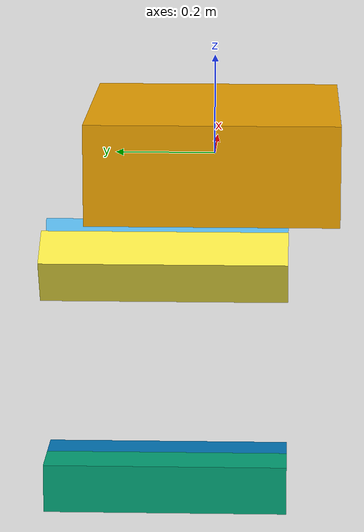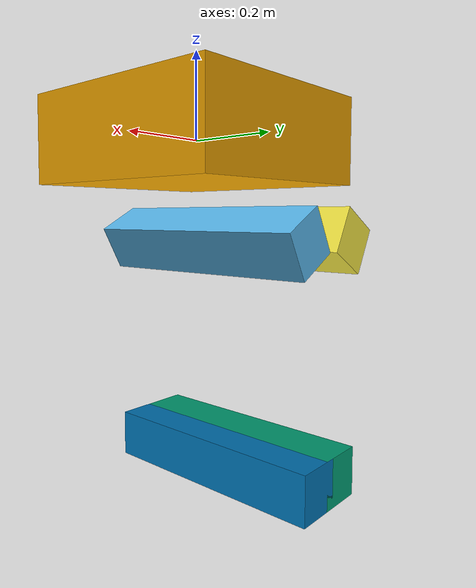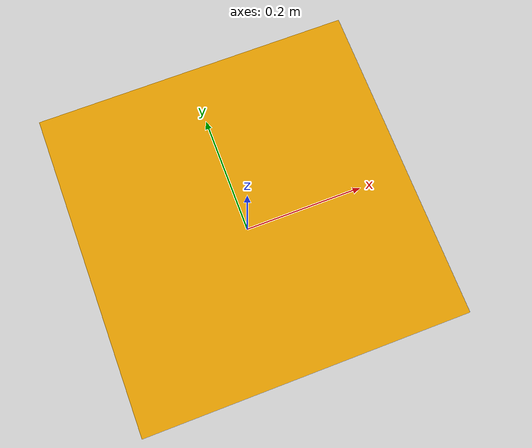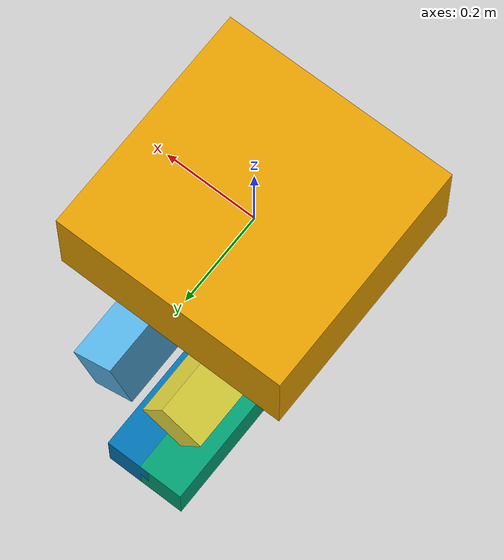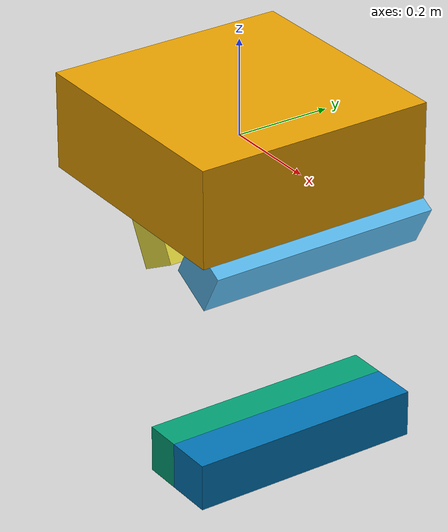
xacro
<robot xmlns:xacro="http://ros.org/wiki/xacro" name="biped_robot">

    <!-- BASE LINK -->
    <link name="base_link">
        <visual>
            <geometry>
                <box size="0.5 0.5 0.2"/> <!-- Base 크기 -->
            </geometry>
            <origin xyz="0 0 0" rpy="0 0 0"/>
        </visual>
        <collision>
            <geometry>
                <box size="0.5 0.5 0.2"/>
            </geometry>
            <origin xyz="0 0 0" rpy="0 0 0"/>
        </collision>
        <inertial>
            <mass value="1.0"/>
            <origin xyz="0 0 0" rpy="0 0 0"/>
            <inertia ixx="0.02" ixy="0.0" ixz="0.0" iyy="0.02" iyz="0.0" izz="0.02"/>
        </inertial>
    </link>

    <!-- LEFT LEG -->
    <joint name="left_hip_joint" type="continuous">
        <parent link="base_link"/>
        <child link="left_upper_leg"/>
        <origin xyz="0.2 0.1 0" rpy="0 0.5 0"/> <!-- 초기 회전 각도 -->
        <axis xyz="0 1 0"/>
        <limit lower="-1.57" upper="1.57" effort="10.0" velocity="1.0"/>
    </joint>

    <link name="left_upper_leg">
        <visual>
            <geometry>
                <box size="0.1 0.5 0.1"/> <!-- Upper leg 크기 -->
            </geometry>
            <origin xyz="0 0 -0.25" rpy="0 0 0"/>
        </visual>
        <collision>
            <geometry>
                <box size="0.1 0.5 0.1"/>
            </geometry>
            <origin xyz="0 0 -0.25" rpy="0 0 0"/>
        </collision>
        <inertial>
            <mass value="0.5"/>
            <origin xyz="0 0 -0.25" rpy="0 0 0"/>
            <inertia ixx="0.01" ixy="0.0" ixz="0.0" iyy="0.01" iyz="0.0" izz="0.01"/>
        </inertial>
    </link>

    <joint name="left_knee_joint" type="continuous">
        <parent link="left_upper_leg"/>
        <child link="left_lower_leg"/>
        <origin xyz="0 0 -0.5" rpy="0 -0.5 0"/> <!-- 초기 각도 -->
        <axis xyz="1 0 0"/>
        <limit lower="-1.57" upper="1.57" effort="10.0" velocity="1.0"/>
    </joint>

    <link name="left_lower_leg">
        <visual>
            <geometry>
                <box size="0.1 0.5 0.1"/> <!-- Lower leg 크기 -->
            </geometry>
            <origin xyz="0 0 -0.25" rpy="0 0 0"/>
        </visual>
        <collision>
            <geometry>
                <box size="0.1 0.5 0.1"/>
            </geometry>
            <origin xyz="0 0 -0.25" rpy="0 0 0"/>
        </collision>
        <inertial>
            <mass value="0.5"/>
            <origin xyz="0 0 -0.25" rpy="0 0 0"/>
            <inertia ixx="0.01" ixy="0.0" ixz="0.0" iyy="0.01" iyz="0.0" izz="0.01"/>
        </inertial>
    </link>

    <!-- RIGHT LEG (동일한 구조로 설정) -->
    <joint name="right_hip_joint" type="continuous">
        <parent link="base_link"/>
        <child link="right_upper_leg"/>
        <origin xyz="-0.2 0.1 0" rpy="0 -0.5 0"/>
        <axis xyz="0 1 0"/>
        <limit lower="-1.57" upper="1.57" effort="10.0" velocity="1.0"/>
    </joint>

    <link name="right_upper_leg">
        <visual>
            <geometry>
                <box size="0.1 0.5 0.1"/>
            </geometry>
            <origin xyz="0 0 -0.25" rpy="0 0 0"/>
        </visual>
        <collision>
            <geometry>
                <box size="0.1 0.5 0.1"/>
            </geometry>
            <origin xyz="0 0 -0.25" rpy="0 0 0"/>
        </collision>
        <inertial>
            <mass value="0.5"/>
            <origin xyz="0 0 -0.25" rpy="0 0 0"/>
            <inertia ixx="0.01" ixy="0.0" ixz="0.0" iyy="0.01" iyz="0.0" izz="0.01"/>
        </inertial>
    </link>

    <joint name="right_knee_joint" type="continuous">
        <parent link="right_upper_leg"/>
        <child link="right_lower_leg"/>
        <origin xyz="0 0 -0.5" rpy="0 0.5 0"/>
        <axis xyz="1 0 0"/>
        <limit lower="-1.57" upper="1.57" effort="10.0" velocity="1.0"/>
    </joint>

    <link name="right_lower_leg">
        <visual>
            <geometry>
                <box size="0.1 0.5 0.1"/>
            </geometry>
            <origin xyz="0 0 -0.25" rpy="0 0 0"/>
        </visual>
        <collision>
            <geometry>
                <box size="0.1 0.5 0.1"/>
            </geometry>
            <origin xyz="0 0 -0.25" rpy="0 0 0"/>
        </collision>
        <inertial>
            <mass value="0.5"/>
            <origin xyz="0 0 -0.25" rpy="0 0 0"/>
            <inertia ixx="0.01" ixy="0.0" ixz="0.0" iyy="0.01" iyz="0.0" izz="0.01"/>
        </inertial>
    </link>

</robot>
